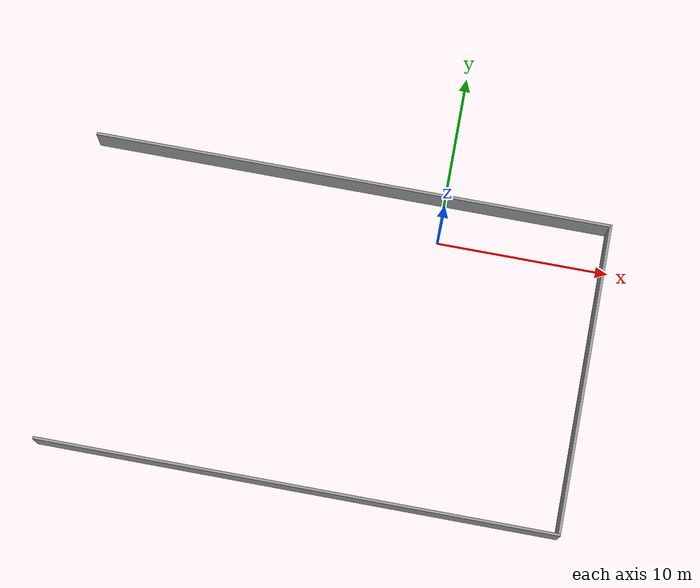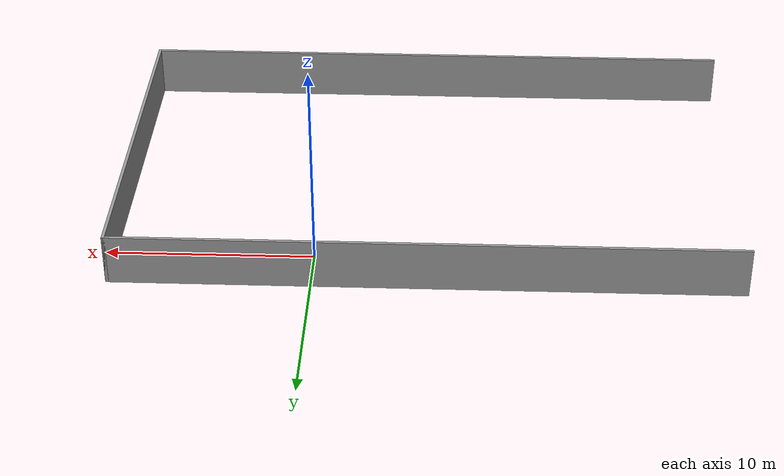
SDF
<?xml version='1.0'?>
<sdf version='1.7'>
  <model name='c_wall'>
    <pose>-5.37707 -6.62899 0 0 -0 0</pose>
    <link name='Wall_20'>
      <collision name='Wall_20_Collision'>
        <geometry>
          <box>
            <size>30 0.15 2.5</size>
          </box>
        </geometry>
        <pose>0 0 1.25 0 -0 0</pose>
      </collision>
      <visual name='Wall_20_Visual'>
        <pose>0 0 1.25 0 -0 0</pose>
        <geometry>
          <box>
            <size>30 0.15 2.5</size>
          </box>
        </geometry>
        <material>
          <script>
            <uri>file://media/materials/scripts/gazebo.material</uri>
            <name>Gazebo/Grey</name>
          </script>
          <ambient>1 1 1 1</ambient>
        </material>
        <meta>
          <layer>0</layer>
        </meta>
      </visual>
      <pose>0 8.925 0 0 -0 0</pose>
    </link>
    <link name='Wall_21'>
      <collision name='Wall_21_Collision'>
        <geometry>
          <box>
            <size>18 0.15 2.5</size>
          </box>
        </geometry>
        <pose>0 0 1.25 0 -0 0</pose>
      </collision>
      <visual name='Wall_21_Visual'>
        <pose>0 0 1.25 0 -0 0</pose>
        <geometry>
          <box>
            <size>18 0.15 2.5</size>
          </box>
        </geometry>
        <material>
          <script>
            <uri>file://media/materials/scripts/gazebo.material</uri>
            <name>Gazebo/Grey</name>
          </script>
          <ambient>1 1 1 1</ambient>
        </material>
        <meta>
          <layer>0</layer>
        </meta>
      </visual>
      <pose>14.925 -0 0 0 -0 -1.5708</pose>
    </link>
    <link name='Wall_22'>
      <collision name='Wall_22_Collision'>
        <geometry>
          <box>
            <size>30 0.15 2.5</size>
          </box>
        </geometry>
        <pose>0 0 1.25 0 -0 0</pose>
      </collision>
      <visual name='Wall_22_Visual'>
        <pose>0 0 1.25 0 -0 0</pose>
        <geometry>
          <box>
            <size>30 0.15 2.5</size>
          </box>
        </geometry>
        <material>
          <script>
            <uri>file://media/materials/scripts/gazebo.material</uri>
            <name>Gazebo/Grey</name>
          </script>
          <ambient>1 1 1 1</ambient>
        </material>
        <meta>
          <layer>0</layer>
        </meta>
      </visual>
      <pose>0 -8.925 0 0 -0 3.14159</pose>
    </link>
    <static>1</static>
  </model>
</sdf>
